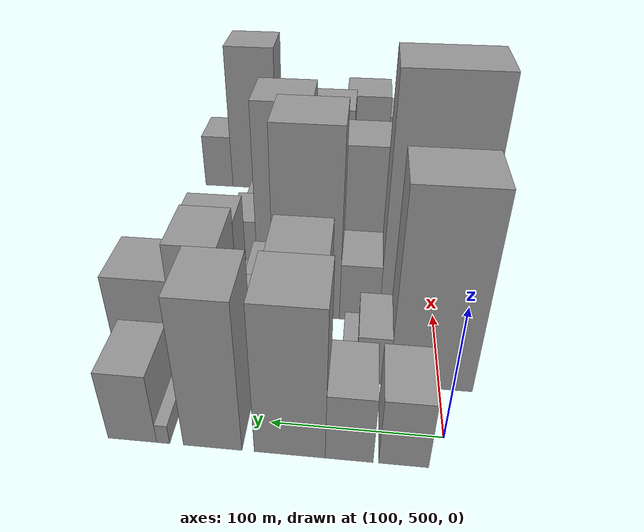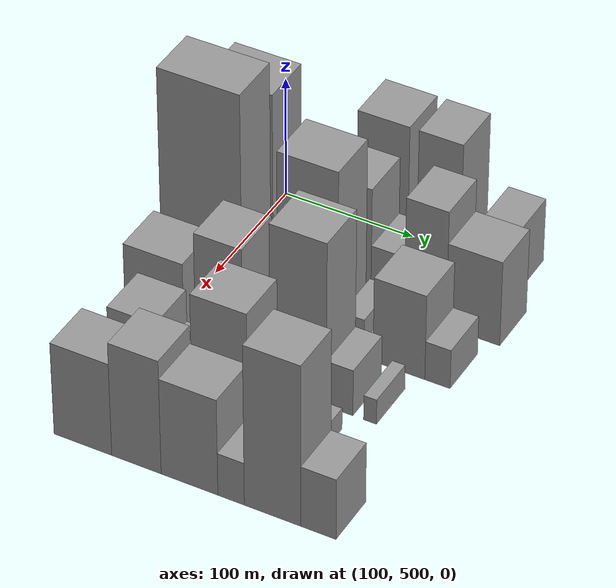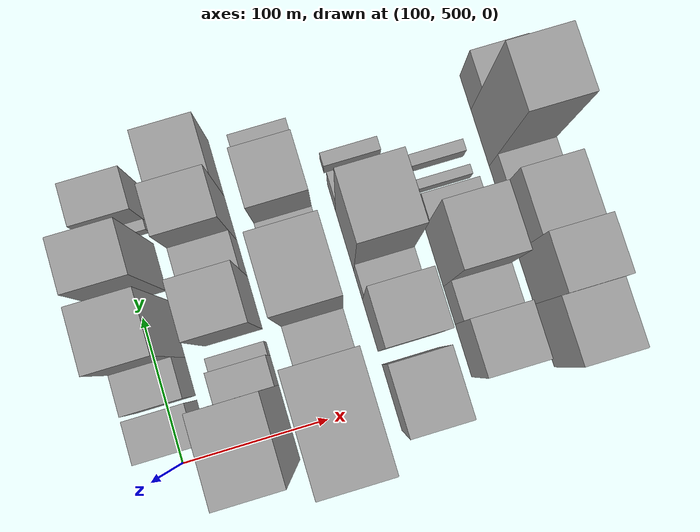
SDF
<sdf version="1.6">
 <world name="default">
  <model name="building_42">
   <static>1</static>
   <pose>100.0000 523.6251 0 0.000000 0.000000 0.000000</pose>
   <link name="link">
    <pose>0 0 25.50 0 0 0</pose>
    <collision name="collision"><geometry><box><size>40.0000 27.2512 51.0000</size></box></geometry></collision>
    <visual name="visual">
     <cast_shadows>0</cast_shadows>
     <geometry><box><size>40.0000 27.2512 51.0000</size></box></geometry>
     <material>
      <script>
       <uri>model://grey_wall/materials/scripts</uri>
       <uri>model://grey_wall/materials/textures</uri>
       <name>vrc/grey_wall</name>
      </script>
     </material>
    </visual>
   </link>
  </model>
  <model name="building_43">
   <static>1</static>
   <pose>100.0000 553.4690 0 0.000000 0.000000 0.000000</pose>
   <link name="link">
    <pose>0 0 25.50 0 0 0</pose>
    <collision name="collision"><geometry><box><size>40.0000 26.4367 51.0000</size></box></geometry></collision>
    <visual name="visual">
     <cast_shadows>0</cast_shadows>
     <geometry><box><size>40.0000 26.4367 51.0000</size></box></geometry>
     <material>
      <script>
       <uri>model://grey_wall/materials/scripts</uri>
       <uri>model://grey_wall/materials/textures</uri>
       <name>vrc/grey_wall</name>
      </script>
     </material>
    </visual>
   </link>
  </model>
  <model name="building_44">
   <static>1</static>
   <pose>100.0000 586.5596 0 0.000000 0.000000 0.000000</pose>
   <link name="link">
    <pose>0 0 55.50 0 0 0</pose>
    <collision name="collision"><geometry><box><size>40.0000 39.7444 111.0000</size></box></geometry></collision>
    <visual name="visual">
     <cast_shadows>0</cast_shadows>
     <geometry><box><size>40.0000 39.7444 111.0000</size></box></geometry>
     <material>
      <script>
       <uri>model://grey_wall/materials/scripts</uri>
       <uri>model://grey_wall/materials/textures</uri>
       <name>vrc/grey_wall</name>
      </script>
     </material>
    </visual>
   </link>
  </model>
  <model name="building_45">
   <static>1</static>
   <pose>100.0000 630.1969 0 0.000000 0.000000 0.000000</pose>
   <link name="link">
    <pose>0 0 55.50 0 0 0</pose>
    <collision name="collision"><geometry><box><size>40.0000 33.5303 111.0000</size></box></geometry></collision>
    <visual name="visual">
     <cast_shadows>0</cast_shadows>
     <geometry><box><size>40.0000 33.5303 111.0000</size></box></geometry>
     <material>
      <script>
       <uri>model://grey_wall/materials/scripts</uri>
       <uri>model://grey_wall/materials/textures</uri>
       <name>vrc/grey_wall</name>
      </script>
     </material>
    </visual>
   </link>
  </model>
  <model name="building_46">
   <static>1</static>
   <pose>100.0000 658.6842 0 0.000000 0.000000 0.000000</pose>
   <link name="link">
    <pose>0 0 7.50 0 0 0</pose>
    <collision name="collision"><geometry><box><size>40.0000 7.4443 15.0000</size></box></geometry></collision>
    <visual name="visual">
     <cast_shadows>0</cast_shadows>
     <geometry><box><size>40.0000 7.4443 15.0000</size></box></geometry>
     <material>
      <script>
       <uri>model://grey_wall/materials/scripts</uri>
       <uri>model://grey_wall/materials/textures</uri>
       <name>vrc/grey_wall</name>
      </script>
     </material>
    </visual>
   </link>
  </model>
  <model name="building_47">
   <static>1</static>
   <pose>100.0000 676.6349 0 0.000000 0.000000 0.000000</pose>
   <link name="link">
    <pose>0 0 27.00 0 0 0</pose>
    <collision name="collision"><geometry><box><size>40.0000 28.4571 54.0000</size></box></geometry></collision>
    <visual name="visual">
     <cast_shadows>0</cast_shadows>
     <geometry><box><size>40.0000 28.4571 54.0000</size></box></geometry>
     <material>
      <script>
       <uri>model://grey_wall/materials/scripts</uri>
       <uri>model://grey_wall/materials/textures</uri>
       <name>vrc/grey_wall</name>
      </script>
     </material>
    </visual>
   </link>
  </model>
  <model name="building_95">
   <static>1</static>
   <pose>155.0000 505.6704 0 0.000000 0.000000 0.000000</pose>
   <link name="link">
    <pose>0 0 73.50 0 0 0</pose>
    <collision name="collision"><geometry><box><size>40.0000 50.9947 147.0000</size></box></geometry></collision>
    <visual name="visual">
     <cast_shadows>0</cast_shadows>
     <geometry><box><size>40.0000 50.9947 147.0000</size></box></geometry>
     <material>
      <script>
       <uri>model://grey_wall/materials/scripts</uri>
       <uri>model://grey_wall/materials/textures</uri>
       <name>vrc/grey_wall</name>
      </script>
     </material>
    </visual>
   </link>
  </model>
  <model name="building_96">
   <static>1</static>
   <pose>155.0000 541.3744 0 0.000000 0.000000 0.000000</pose>
   <link name="link">
    <pose>0 0 19.50 0 0 0</pose>
    <collision name="collision"><geometry><box><size>40.0000 20.4133 39.0000</size></box></geometry></collision>
    <visual name="visual">
     <cast_shadows>0</cast_shadows>
     <geometry><box><size>40.0000 20.4133 39.0000</size></box></geometry>
     <material>
      <script>
       <uri>model://grey_wall/materials/scripts</uri>
       <uri>model://grey_wall/materials/textures</uri>
       <name>vrc/grey_wall</name>
      </script>
     </material>
    </visual>
   </link>
  </model>
  <model name="building_97">
   <static>1</static>
   <pose>155.0000 556.3083 0 0.000000 0.000000 0.000000</pose>
   <link name="link">
    <pose>0 0 10.50 0 0 0</pose>
    <collision name="collision"><geometry><box><size>40.0000 9.4545 21.0000</size></box></geometry></collision>
    <visual name="visual">
     <cast_shadows>0</cast_shadows>
     <geometry><box><size>40.0000 9.4545 21.0000</size></box></geometry>
     <material>
      <script>
       <uri>model://grey_wall/materials/scripts</uri>
       <uri>model://grey_wall/materials/textures</uri>
       <name>vrc/grey_wall</name>
      </script>
     </material>
    </visual>
   </link>
  </model>
  <model name="building_98">
   <static>1</static>
   <pose>155.0000 588.6050 0 0.000000 0.000000 0.000000</pose>
   <link name="link">
    <pose>0 0 48.00 0 0 0</pose>
    <collision name="collision"><geometry><box><size>40.0000 37.1389 96.0000</size></box></geometry></collision>
    <visual name="visual">
     <cast_shadows>0</cast_shadows>
     <geometry><box><size>40.0000 37.1389 96.0000</size></box></geometry>
     <material>
      <script>
       <uri>model://grey_wall/materials/scripts</uri>
       <uri>model://grey_wall/materials/textures</uri>
       <name>vrc/grey_wall</name>
      </script>
     </material>
    </visual>
   </link>
  </model>
  <model name="building_99">
   <static>1</static>
   <pose>155.0000 620.0133 0 0.000000 0.000000 0.000000</pose>
   <link name="link">
    <pose>0 0 24.00 0 0 0</pose>
    <collision name="collision"><geometry><box><size>40.0000 25.6776 48.0000</size></box></geometry></collision>
    <visual name="visual">
     <cast_shadows>0</cast_shadows>
     <geometry><box><size>40.0000 25.6776 48.0000</size></box></geometry>
     <material>
      <script>
       <uri>model://grey_wall/materials/scripts</uri>
       <uri>model://grey_wall/materials/textures</uri>
       <name>vrc/grey_wall</name>
      </script>
     </material>
    </visual>
   </link>
  </model>
  <model name="building_100">
   <static>1</static>
   <pose>155.0000 648.8126 0 0.000000 0.000000 0.000000</pose>
   <link name="link">
    <pose>0 0 49.50 0 0 0</pose>
    <collision name="collision"><geometry><box><size>40.0000 31.9209 99.0000</size></box></geometry></collision>
    <visual name="visual">
     <cast_shadows>0</cast_shadows>
     <geometry><box><size>40.0000 31.9209 99.0000</size></box></geometry>
     <material>
      <script>
       <uri>model://grey_wall/materials/scripts</uri>
       <uri>model://grey_wall/materials/textures</uri>
       <name>vrc/grey_wall</name>
      </script>
     </material>
    </visual>
   </link>
  </model>
  <model name="building_101">
   <static>1</static>
   <pose>155.0000 685.0090 0 0.000000 0.000000 0.000000</pose>
   <link name="link">
    <pose>0 0 36.00 0 0 0</pose>
    <collision name="collision"><geometry><box><size>40.0000 40.4718 72.0000</size></box></geometry></collision>
    <visual name="visual">
     <cast_shadows>0</cast_shadows>
     <geometry><box><size>40.0000 40.4718 72.0000</size></box></geometry>
     <material>
      <script>
       <uri>model://grey_wall/materials/scripts</uri>
       <uri>model://grey_wall/materials/textures</uri>
       <name>vrc/grey_wall</name>
      </script>
     </material>
    </visual>
   </link>
  </model>
  <model name="building_147">
   <static>1</static>
   <pose>210.0000 506.4985 0 0.000000 0.000000 0.000000</pose>
   <link name="link">
    <pose>0 0 93.00 0 0 0</pose>
    <collision name="collision"><geometry><box><size>40.0000 62.6194 186.0000</size></box></geometry></collision>
    <visual name="visual">
     <cast_shadows>0</cast_shadows>
     <geometry><box><size>40.0000 62.6194 186.0000</size></box></geometry>
     <material>
      <script>
       <uri>model://grey_wall/materials/scripts</uri>
       <uri>model://grey_wall/materials/textures</uri>
       <name>vrc/grey_wall</name>
      </script>
     </material>
    </visual>
   </link>
  </model>
  <model name="building_148">
   <static>1</static>
   <pose>210.0000 551.4992 0 0.000000 0.000000 0.000000</pose>
   <link name="link">
    <pose>0 0 24.00 0 0 0</pose>
    <collision name="collision"><geometry><box><size>40.0000 27.3821 48.0000</size></box></geometry></collision>
    <visual name="visual">
     <cast_shadows>0</cast_shadows>
     <geometry><box><size>40.0000 27.3821 48.0000</size></box></geometry>
     <material>
      <script>
       <uri>model://grey_wall/materials/scripts</uri>
       <uri>model://grey_wall/materials/textures</uri>
       <name>vrc/grey_wall</name>
      </script>
     </material>
    </visual>
   </link>
  </model>
  <model name="building_149">
   <static>1</static>
   <pose>210.0000 588.2005 0 0.000000 0.000000 0.000000</pose>
   <link name="link">
    <pose>0 0 75.00 0 0 0</pose>
    <collision name="collision"><geometry><box><size>40.0000 46.0205 150.0000</size></box></geometry></collision>
    <visual name="visual">
     <cast_shadows>0</cast_shadows>
     <geometry><box><size>40.0000 46.0205 150.0000</size></box></geometry>
     <material>
      <script>
       <uri>model://grey_wall/materials/scripts</uri>
       <uri>model://grey_wall/materials/textures</uri>
       <name>vrc/grey_wall</name>
      </script>
     </material>
    </visual>
   </link>
  </model>
  <model name="building_150">
   <static>1</static>
   <pose>210.0000 622.8026 0 0.000000 0.000000 0.000000</pose>
   <link name="link">
    <pose>0 0 16.50 0 0 0</pose>
    <collision name="collision"><geometry><box><size>40.0000 17.1838 33.0000</size></box></geometry></collision>
    <visual name="visual">
     <cast_shadows>0</cast_shadows>
     <geometry><box><size>40.0000 17.1838 33.0000</size></box></geometry>
     <material>
      <script>
       <uri>model://grey_wall/materials/scripts</uri>
       <uri>model://grey_wall/materials/textures</uri>
       <name>vrc/grey_wall</name>
      </script>
     </material>
    </visual>
   </link>
  </model>
  <model name="building_151">
   <static>1</static>
   <pose>210.0000 634.8335 0 0.000000 0.000000 0.000000</pose>
   <link name="link">
    <pose>0 0 7.50 0 0 0</pose>
    <collision name="collision"><geometry><box><size>40.0000 6.8779 15.0000</size></box></geometry></collision>
    <visual name="visual">
     <cast_shadows>0</cast_shadows>
     <geometry><box><size>40.0000 6.8779 15.0000</size></box></geometry>
     <material>
      <script>
       <uri>model://grey_wall/materials/scripts</uri>
       <uri>model://grey_wall/materials/textures</uri>
       <name>vrc/grey_wall</name>
      </script>
     </material>
    </visual>
   </link>
  </model>
  <model name="building_152">
   <static>1</static>
   <pose>210.0000 657.7443 0 0.000000 0.000000 0.000000</pose>
   <link name="link">
    <pose>0 0 36.00 0 0 0</pose>
    <collision name="collision"><geometry><box><size>40.0000 38.9437 72.0000</size></box></geometry></collision>
    <visual name="visual">
     <cast_shadows>0</cast_shadows>
     <geometry><box><size>40.0000 38.9437 72.0000</size></box></geometry>
     <material>
      <script>
       <uri>model://grey_wall/materials/scripts</uri>
       <uri>model://grey_wall/materials/textures</uri>
       <name>vrc/grey_wall</name>
      </script>
     </material>
    </visual>
   </link>
  </model>
  <model name="building_153">
   <static>1</static>
   <pose>210.0000 686.6774 0 0.000000 0.000000 0.000000</pose>
   <link name="link">
    <pose>0 0 16.50 0 0 0</pose>
    <collision name="collision"><geometry><box><size>40.0000 18.9224 33.0000</size></box></geometry></collision>
    <visual name="visual">
     <cast_shadows>0</cast_shadows>
     <geometry><box><size>40.0000 18.9224 33.0000</size></box></geometry>
     <material>
      <script>
       <uri>model://grey_wall/materials/scripts</uri>
       <uri>model://grey_wall/materials/textures</uri>
       <name>vrc/grey_wall</name>
      </script>
     </material>
    </visual>
   </link>
  </model>
  <model name="building_198">
   <static>1</static>
   <pose>265.0000 501.6517 0 0.000000 0.000000 0.000000</pose>
   <link name="link">
    <pose>0 0 39.00 0 0 0</pose>
    <collision name="collision"><geometry><box><size>40.0000 45.3210 78.0000</size></box></geometry></collision>
    <visual name="visual">
     <cast_shadows>0</cast_shadows>
     <geometry><box><size>40.0000 45.3210 78.0000</size></box></geometry>
     <material>
      <script>
       <uri>model://grey_wall/materials/scripts</uri>
       <uri>model://grey_wall/materials/textures</uri>
       <name>vrc/grey_wall</name>
      </script>
     </material>
    </visual>
   </link>
  </model>
  <model name="building_199">
   <static>1</static>
   <pose>265.0000 551.3649 0 0.000000 0.000000 0.000000</pose>
   <link name="link">
    <pose>0 0 54.00 0 0 0</pose>
    <collision name="collision"><geometry><box><size>40.0000 36.1055 108.0000</size></box></geometry></collision>
    <visual name="visual">
     <cast_shadows>0</cast_shadows>
     <geometry><box><size>40.0000 36.1055 108.0000</size></box></geometry>
     <material>
      <script>
       <uri>model://grey_wall/materials/scripts</uri>
       <uri>model://grey_wall/materials/textures</uri>
       <name>vrc/grey_wall</name>
      </script>
     </material>
    </visual>
   </link>
  </model>
  <model name="building_200">
   <static>1</static>
   <pose>265.0000 579.7198 0 0.000000 0.000000 0.000000</pose>
   <link name="link">
    <pose>0 0 19.50 0 0 0</pose>
    <collision name="collision"><geometry><box><size>40.0000 20.6043 39.0000</size></box></geometry></collision>
    <visual name="visual">
     <cast_shadows>0</cast_shadows>
     <geometry><box><size>40.0000 20.6043 39.0000</size></box></geometry>
     <material>
      <script>
       <uri>model://grey_wall/materials/scripts</uri>
       <uri>model://grey_wall/materials/textures</uri>
       <name>vrc/grey_wall</name>
      </script>
     </material>
    </visual>
   </link>
  </model>
  <model name="building_201">
   <static>1</static>
   <pose>265.0000 611.3526 0 0.000000 0.000000 0.000000</pose>
   <link name="link">
    <pose>0 0 69.00 0 0 0</pose>
    <collision name="collision"><geometry><box><size>40.0000 42.6612 138.0000</size></box></geometry></collision>
    <visual name="visual">
     <cast_shadows>0</cast_shadows>
     <geometry><box><size>40.0000 42.6612 138.0000</size></box></geometry>
     <material>
      <script>
       <uri>model://grey_wall/materials/scripts</uri>
       <uri>model://grey_wall/materials/textures</uri>
       <name>vrc/grey_wall</name>
      </script>
     </material>
    </visual>
   </link>
  </model>
  <model name="building_202">
   <static>1</static>
   <pose>265.0000 642.6169 0 0.000000 0.000000 0.000000</pose>
   <link name="link">
    <pose>0 0 19.50 0 0 0</pose>
    <collision name="collision"><geometry><box><size>40.0000 19.8674 39.0000</size></box></geometry></collision>
    <visual name="visual">
     <cast_shadows>0</cast_shadows>
     <geometry><box><size>40.0000 19.8674 39.0000</size></box></geometry>
     <material>
      <script>
       <uri>model://grey_wall/materials/scripts</uri>
       <uri>model://grey_wall/materials/textures</uri>
       <name>vrc/grey_wall</name>
      </script>
     </material>
    </visual>
   </link>
  </model>
  <model name="building_203">
   <static>1</static>
   <pose>265.0000 665.3311 0 0.000000 0.000000 0.000000</pose>
   <link name="link">
    <pose>0 0 10.50 0 0 0</pose>
    <collision name="collision"><geometry><box><size>40.0000 9.5609 21.0000</size></box></geometry></collision>
    <visual name="visual">
     <cast_shadows>0</cast_shadows>
     <geometry><box><size>40.0000 9.5609 21.0000</size></box></geometry>
     <material>
      <script>
       <uri>model://grey_wall/materials/scripts</uri>
       <uri>model://grey_wall/materials/textures</uri>
       <name>vrc/grey_wall</name>
      </script>
     </material>
    </visual>
   </link>
  </model>
  <model name="building_247">
   <static>1</static>
   <pose>320.0000 517.5136 0 0.000000 0.000000 0.000000</pose>
   <link name="link">
    <pose>0 0 36.00 0 0 0</pose>
    <collision name="collision"><geometry><box><size>40.0000 36.6488 72.0000</size></box></geometry></collision>
    <visual name="visual">
     <cast_shadows>0</cast_shadows>
     <geometry><box><size>40.0000 36.6488 72.0000</size></box></geometry>
     <material>
      <script>
       <uri>model://grey_wall/materials/scripts</uri>
       <uri>model://grey_wall/materials/textures</uri>
       <name>vrc/grey_wall</name>
      </script>
     </material>
    </visual>
   </link>
  </model>
  <model name="building_248">
   <static>1</static>
   <pose>320.0000 549.0839 0 0.000000 0.000000 0.000000</pose>
   <link name="link">
    <pose>0 0 22.50 0 0 0</pose>
    <collision name="collision"><geometry><box><size>40.0000 26.4917 45.0000</size></box></geometry></collision>
    <visual name="visual">
     <cast_shadows>0</cast_shadows>
     <geometry><box><size>40.0000 26.4917 45.0000</size></box></geometry>
     <material>
      <script>
       <uri>model://grey_wall/materials/scripts</uri>
       <uri>model://grey_wall/materials/textures</uri>
       <name>vrc/grey_wall</name>
      </script>
     </material>
    </visual>
   </link>
  </model>
  <model name="building_249">
   <static>1</static>
   <pose>320.0000 583.2236 0 0.000000 0.000000 0.000000</pose>
   <link name="link">
    <pose>0 0 54.00 0 0 0</pose>
    <collision name="collision"><geometry><box><size>40.0000 41.7878 108.0000</size></box></geometry></collision>
    <visual name="visual">
     <cast_shadows>0</cast_shadows>
     <geometry><box><size>40.0000 41.7878 108.0000</size></box></geometry>
     <material>
      <script>
       <uri>model://grey_wall/materials/scripts</uri>
       <uri>model://grey_wall/materials/textures</uri>
       <name>vrc/grey_wall</name>
      </script>
     </material>
    </visual>
   </link>
  </model>
  <model name="building_250">
   <static>1</static>
   <pose>320.0000 613.3538 0 0.000000 0.000000 0.000000</pose>
   <link name="link">
    <pose>0 0 16.50 0 0 0</pose>
    <collision name="collision"><geometry><box><size>40.0000 18.4726 33.0000</size></box></geometry></collision>
    <visual name="visual">
     <cast_shadows>0</cast_shadows>
     <geometry><box><size>40.0000 18.4726 33.0000</size></box></geometry>
     <material>
      <script>
       <uri>model://grey_wall/materials/scripts</uri>
       <uri>model://grey_wall/materials/textures</uri>
       <name>vrc/grey_wall</name>
      </script>
     </material>
    </visual>
   </link>
  </model>
  <model name="building_251">
   <static>1</static>
   <pose>320.0000 631.9292 0 0.000000 0.000000 0.000000</pose>
   <link name="link">
    <pose>0 0 7.50 0 0 0</pose>
    <collision name="collision"><geometry><box><size>40.0000 6.6781 15.0000</size></box></geometry></collision>
    <visual name="visual">
     <cast_shadows>0</cast_shadows>
     <geometry><box><size>40.0000 6.6781 15.0000</size></box></geometry>
     <material>
      <script>
       <uri>model://grey_wall/materials/scripts</uri>
       <uri>model://grey_wall/materials/textures</uri>
       <name>vrc/grey_wall</name>
      </script>
     </material>
    </visual>
   </link>
  </model>
  <model name="building_252">
   <static>1</static>
   <pose>320.0000 648.4012 0 0.000000 0.000000 0.000000</pose>
   <link name="link">
    <pose>0 0 9.00 0 0 0</pose>
    <collision name="collision"><geometry><box><size>40.0000 8.2660 18.0000</size></box></geometry></collision>
    <visual name="visual">
     <cast_shadows>0</cast_shadows>
     <geometry><box><size>40.0000 8.2660 18.0000</size></box></geometry>
     <material>
      <script>
       <uri>model://grey_wall/materials/scripts</uri>
       <uri>model://grey_wall/materials/textures</uri>
       <name>vrc/grey_wall</name>
      </script>
     </material>
    </visual>
   </link>
  </model>
  <model name="building_292">
   <static>1</static>
   <pose>375.0000 511.4862 0 0.000000 0.000000 0.000000</pose>
   <link name="link">
    <pose>0 0 39.00 0 0 0</pose>
    <collision name="collision"><geometry><box><size>40.0000 43.8517 78.0000</size></box></geometry></collision>
    <visual name="visual">
     <cast_shadows>0</cast_shadows>
     <geometry><box><size>40.0000 43.8517 78.0000</size></box></geometry>
     <material>
      <script>
       <uri>model://grey_wall/materials/scripts</uri>
       <uri>model://grey_wall/materials/textures</uri>
       <name>vrc/grey_wall</name>
      </script>
     </material>
    </visual>
   </link>
  </model>
  <model name="building_293">
   <static>1</static>
   <pose>375.0000 552.0499 0 0.000000 0.000000 0.000000</pose>
   <link name="link">
    <pose>0 0 48.00 0 0 0</pose>
    <collision name="collision"><geometry><box><size>40.0000 37.2756 96.0000</size></box></geometry></collision>
    <visual name="visual">
     <cast_shadows>0</cast_shadows>
     <geometry><box><size>40.0000 37.2756 96.0000</size></box></geometry>
     <material>
      <script>
       <uri>model://grey_wall/materials/scripts</uri>
       <uri>model://grey_wall/materials/textures</uri>
       <name>vrc/grey_wall</name>
      </script>
     </material>
    </visual>
   </link>
  </model>
  <model name="building_294">
   <static>1</static>
   <pose>375.0000 591.8479 0 0.000000 0.000000 0.000000</pose>
   <link name="link">
    <pose>0 0 40.50 0 0 0</pose>
    <collision name="collision"><geometry><box><size>40.0000 42.3203 81.0000</size></box></geometry></collision>
    <visual name="visual">
     <cast_shadows>0</cast_shadows>
     <geometry><box><size>40.0000 42.3203 81.0000</size></box></geometry>
     <material>
      <script>
       <uri>model://grey_wall/materials/scripts</uri>
       <uri>model://grey_wall/materials/textures</uri>
       <name>vrc/grey_wall</name>
      </script>
     </material>
    </visual>
   </link>
  </model>
  <model name="building_295">
   <static>1</static>
   <pose>375.0000 622.7852 0 0.000000 0.000000 0.000000</pose>
   <link name="link">
    <pose>0 0 18.00 0 0 0</pose>
    <collision name="collision"><geometry><box><size>40.0000 19.5543 36.0000</size></box></geometry></collision>
    <visual name="visual">
     <cast_shadows>0</cast_shadows>
     <geometry><box><size>40.0000 19.5543 36.0000</size></box></geometry>
     <material>
      <script>
       <uri>model://grey_wall/materials/scripts</uri>
       <uri>model://grey_wall/materials/textures</uri>
       <name>vrc/grey_wall</name>
      </script>
     </material>
    </visual>
   </link>
  </model>
  <model name="building_296">
   <static>1</static>
   <pose>375.0000 653.2763 0 0.000000 0.000000 0.000000</pose>
   <link name="link">
    <pose>0 0 67.50 0 0 0</pose>
    <collision name="collision"><geometry><box><size>40.0000 41.4279 135.0000</size></box></geometry></collision>
    <visual name="visual">
     <cast_shadows>0</cast_shadows>
     <geometry><box><size>40.0000 41.4279 135.0000</size></box></geometry>
     <material>
      <script>
       <uri>model://grey_wall/materials/scripts</uri>
       <uri>model://grey_wall/materials/textures</uri>
       <name>vrc/grey_wall</name>
      </script>
     </material>
    </visual>
   </link>
  </model>
  <model name="building_297">
   <static>1</static>
   <pose>375.0000 686.7915 0 0.000000 0.000000 0.000000</pose>
   <link name="link">
    <pose>0 0 25.50 0 0 0</pose>
    <collision name="collision"><geometry><box><size>40.0000 25.6024 51.0000</size></box></geometry></collision>
    <visual name="visual">
     <cast_shadows>0</cast_shadows>
     <geometry><box><size>40.0000 25.6024 51.0000</size></box></geometry>
     <material>
      <script>
       <uri>model://grey_wall/materials/scripts</uri>
       <uri>model://grey_wall/materials/textures</uri>
       <name>vrc/grey_wall</name>
      </script>
     </material>
    </visual>
   </link>
  </model>
 </world>
</sdf>
